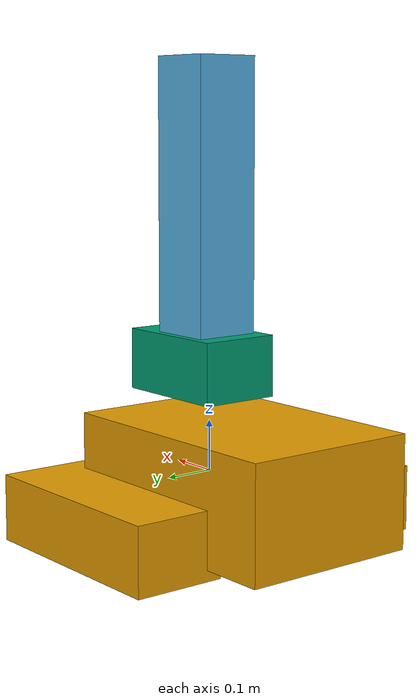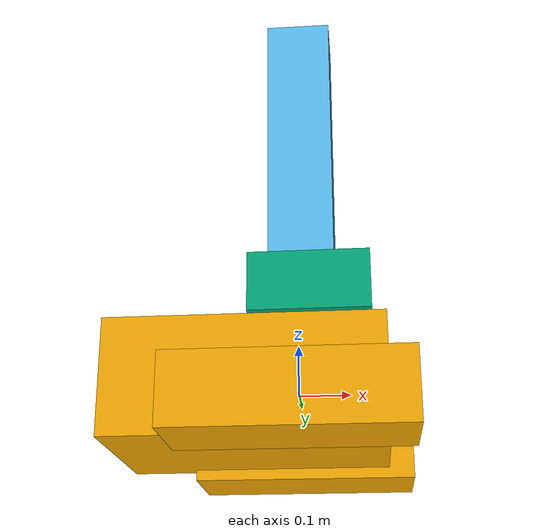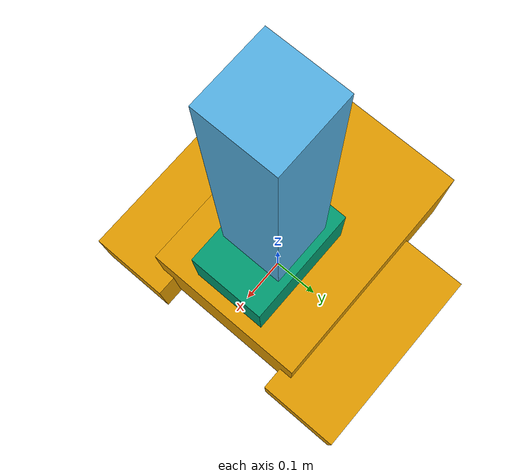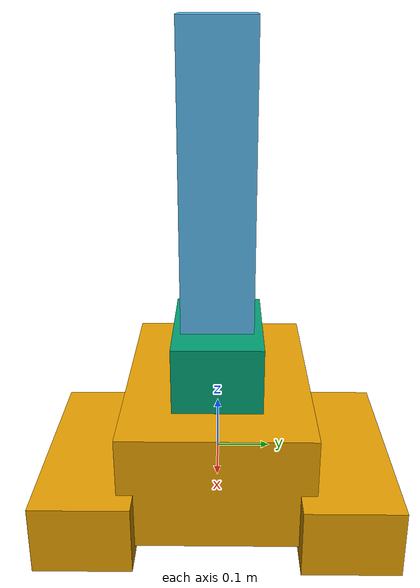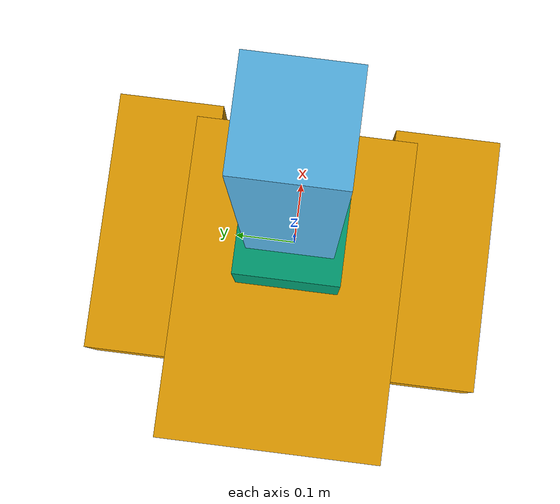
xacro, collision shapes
<?xml version="1.0" ?>
<!-- |    Component visualization for ARX LIFT2S                                         | -->
<robot name="ARX Lift2S" xmlns:xacro="http://www.ros.org/wiki/xacro">
	<xacro:property name="PI" value="3.1415926535897931"/>
	<xacro:arg name="type" default="chassis"/>
	<xacro:arg name="collider" default="simple"/>

	<xacro:if value="${'$(arg type)' == 'chassis'}">
		<xacro:include filename="$(find arx_lift2s_description)/xacro/components/chassis.xacro"/>
		<xacro:chassis enable_wheel_joints="true" collider="$(arg collider)"/>
	</xacro:if>

	<xacro:if value="${'$(arg type)' == 'wheel'}">
		<xacro:include filename="$(find arx_lift2s_description)/xacro/components/wheel.xacro"/>
		<xacro:wheel wheel_name="wheel" enable_passive_wheels="true"/>

		<link name="base_link"/>
		<joint name="base_joint" type="fixed">
			<parent link="base_link"/>
			<child link="wheel"/>
		</joint>
	</xacro:if>
</robot>

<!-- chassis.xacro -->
<robot xmlns:xacro="http://www.ros.org/wiki/xacro" name="arx_lift2s_base">
	<xacro:arg name="robot_name" default="arx_lift2s_base"/>

	<xacro:macro name="chassis" params="enable_wheel_joints:='false' collider:='simple'">

		<link name="base_link">
			<inertial>
				<origin xyz="-0.010039 0.0013761 0.04956"/>
				<mass value="21.045"/>
				<inertia ixx="1.70029164" ixy="-0.00073232" ixz="-0.03255532" iyy="1.70804910" iyz="-0.00688370"
								 izz="0.97173287"/>
			</inertial>
			<visual>
				<geometry>
					<mesh filename="file://$(find arx_lift2s_description)/meshes/chassis/base_link.glb"/>
				</geometry>
			</visual>
			<xacro:if value="${collider == 'convex'}">
				<collision>
					<geometry>
						<mesh filename="file://$(find arx_lift2s_description)/meshes/chassis/base_link.glb"/>
					</geometry>
				</collision>
			</xacro:if>
			<xacro:if value="${collider == 'simple'}">
				<!-- Main chassis deck (not used in OCS2 arm self-collision pairs) -->
				<collision name="simple_base_platform">
					<origin xyz="-0.09 0 0.0" rpy="0 0 0"/>
					<geometry>
						<box size="0.52 0.36 0.22"/>
					</geometry>
				</collision>
				<!-- Left / right side skirts -->
				<collision name="simple_base_left">
					<origin xyz="0.0 0.24 -0.066" rpy="0 0 0"/>
					<geometry>
						<box size="0.44 0.18 0.13"/>
					</geometry>
				</collision>
				<collision name="simple_base_right">
					<origin xyz="0.0 -0.24 -0.066" rpy="0 0 0"/>
					<geometry>
						<box size="0.43 0.18 0.13"/>
					</geometry>
				</collision>
			</xacro:if>
		</link>

		<!-- Dedicated mast link so OCS2 pairs hit the lift column, not deck/skirts/rear panel -->
		<link name="lift_mast_link">
			<xacro:if value="${collider == 'simple'}">
				<collision name="simple_lift_mast">
					<origin xyz="0 0 0" rpy="0 0 0"/>
					<geometry>
						<box size="0.13 0.13 0.60"/>
					</geometry>
				</collision>
			</xacro:if>
			<xacro:if value="${collider == 'convex'}">
				<!-- approximate mast volume when convex meshes are used on base/lift -->
				<collision name="simple_lift_mast">
					<origin xyz="0 0 0" rpy="0 0 0"/>
					<geometry>
						<box size="0.13 0.13 0.60"/>
					</geometry>
				</collision>
			</xacro:if>
		</link>
		<joint name="lift_mast_joint" type="fixed">
			<origin xyz="0.01 0 0.50" rpy="0 0 0"/>
			<parent link="base_link"/>
			<child link="lift_mast_link"/>
		</joint>

		<link name="lift_link">
			<inertial>
				<origin xyz="-0.053315 -0.00061422 -0.0086454"/>
				<mass value="14.181"/>
				<inertia ixx="0.32744849" ixy="-0.00306617" ixz="0.05920163" iyy="0.36541112" iyz="0.00117932"
								 izz="0.49616592"/>
			</inertial>
			<visual>
				<geometry>
					<mesh filename="file://$(find arx_lift2s_description)/meshes/chassis/lift.glb"/>
				</geometry>
			</visual>
			<xacro:if value="${collider == 'convex'}">
				<collision>
					<geometry>
						<mesh filename="file://$(find arx_lift2s_description)/meshes/chassis/lift.glb"/>
					</geometry>
				</collision>
			</xacro:if>
			<xacro:if value="${collider == 'simple'}">
				<!-- Carriage plate only; rear upright removed (was registering as back screen) -->
				<collision name="simple_lift_carriage">
					<origin xyz="-0.015 0 -0.01" rpy="0 0 0"/>
					<geometry>
						<box size="0.24 0.16 0.12"/>
					</geometry>
				</collision>
			</xacro:if>
		</link>

		<joint name="lift_joint" type="prismatic">
			<origin xyz="0.040103 0.0007607 0.221608"/>
			<parent link="base_link"/>
			<child link="lift_link"/>
			<axis xyz="0 0 1"/>
			<limit lower="0" upper="0.46" effort="400" velocity="0.15"/>
		</joint>

		<xacro:property name="wheel_joint_type" value="fixed"/>
		<xacro:if value="${enable_wheel_joints}">
			<xacro:property name="wheel_joint_type" value="continuous"/>
		</xacro:if>

		<xacro:if value="${enable_wheel_joints}">
			<link name="wheel_1"/>
			<link name="wheel_2"/>
			<link name="wheel_3"/>
		</xacro:if>
		<xacro:unless value="${enable_wheel_joints}">
			<xacro:include filename="$(find component_models)/xacro/omnia_150.xacro"/>
			<xacro:wheel wheel_name="wheel_1" enable_passive_wheels="false"/>
			<xacro:wheel wheel_name="wheel_2" enable_passive_wheels="false"/>
			<xacro:wheel wheel_name="wheel_3" enable_passive_wheels="false"/>
		</xacro:unless>

		<joint name="wheel1_joint" type="${wheel_joint_type}">
			<origin xyz="0.15361 0.29246 -0.093" rpy="0.0 0.0 1.0472"/>
			<parent link="base_link"/>
			<child link="wheel_1"/>
			<xacro:if value="${enable_wheel_joints}">
				<axis xyz="1 0 0"/>
			</xacro:if>
		</joint>

		<joint name="wheel2_joint" type="${wheel_joint_type}">
			<origin xyz="0.15361 -0.29245 -0.093" rpy="0.0 0.0 -1.0472"/>
			<parent link="base_link"/>
			<child link="wheel_2"/>
			<xacro:if value="${enable_wheel_joints}">
				<axis xyz="1 0 0"/>
			</xacro:if>
		</joint>

		<joint name="wheel3_joint" type="${wheel_joint_type}">
			<origin xyz="-0.35293 0 -0.093" rpy="0.0 0.0 3.1415"/>
			<parent link="base_link"/>
			<child link="wheel_3"/>
			<xacro:if value="${enable_wheel_joints}">
				<axis xyz="1 0 0"/>
			</xacro:if>
		</joint>

	</xacro:macro>
</robot>
